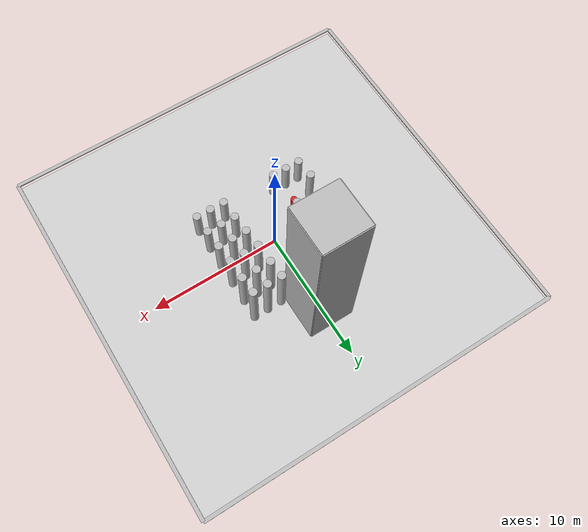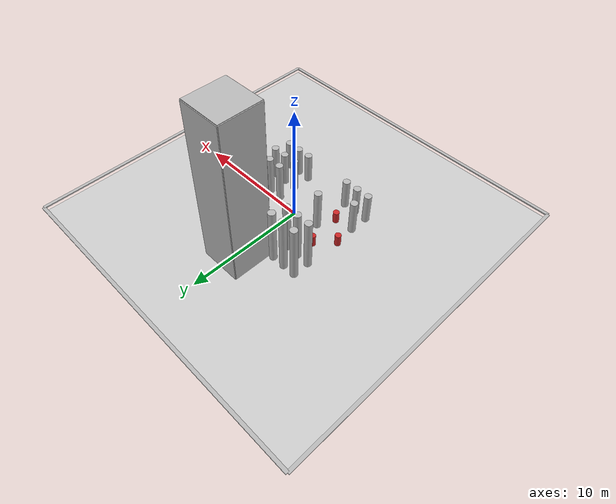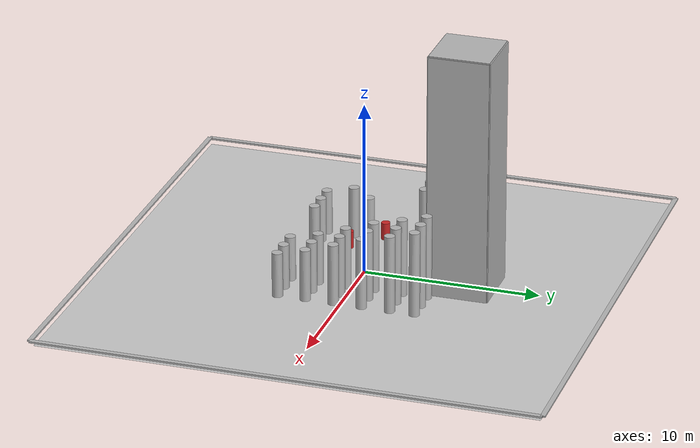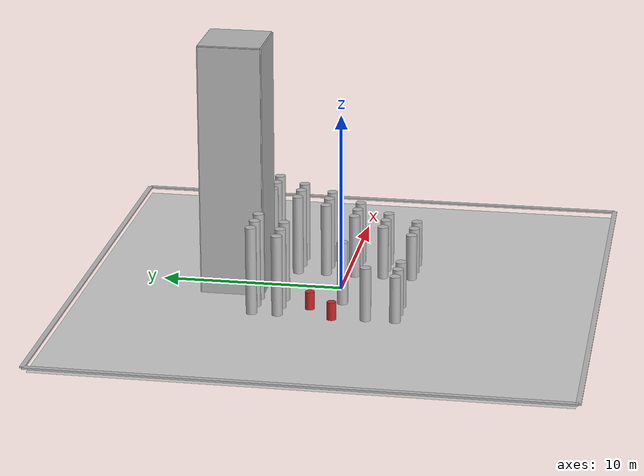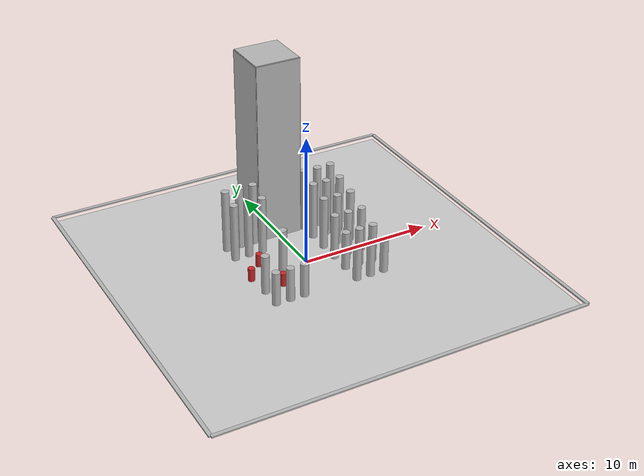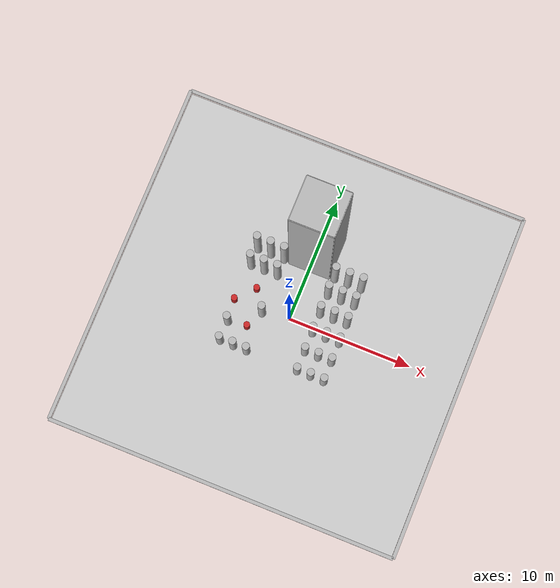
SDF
<?xml version="1.0"?>
<!-- Tour Hassan Rabat — plaza + pillar border, cloudy sky, mosque -->
<sdf version="1.6">
  <world name="hassan_rabat">

  <physics type="ode">
    <max_step_size>0.01</max_step_size>
    <real_time_factor>1</real_time_factor>
    <real_time_update_rate>100</real_time_update_rate>
    <ode>
      <solver><type>quick</type><iters>50</iters><sor>1.3</sor></solver>
      <constraints><cfm>0</cfm><erp>0.2</erp>
        <contact_max_correcting_vel>100</contact_max_correcting_vel>
        <contact_surface_layer>0.001</contact_surface_layer>
      </constraints>
    </ode>
  </physics>

  <plugin name="gazebo_ros_state" filename="libgazebo_ros_state.so">
    <ros><namespace>/</namespace></ros>
    <update_rate>20.0</update_rate>
  </plugin>

  <scene>
    <ambient>0.92 0.95 1.0 1</ambient>
    <background>0.55 0.78 0.98 1</background>
    <shadows>false</shadows>
    <grid>false</grid>
  </scene>
  <light type="directional" name="sun_warm">
    <cast_shadows>false</cast_shadows>
    <diffuse>1.0 0.97 0.88 1</diffuse>
    <specular>0.15 0.12 0.08 1</specular>
    <direction>-0.35 0.12 -0.92</direction>
  </light>
  <light type="directional" name="sky_fill">
    <cast_shadows>false</cast_shadows>
    <diffuse>0.45 0.55 0.75 1</diffuse>
    <direction>0.1 -0.05 -1.0</direction>
  </light>

  <model name="hassan_plaza"><static>true</static><pose>0 0 0 0 0 0</pose><link name="link"><collision name="c"><geometry><plane><normal>0 0 1</normal><size>28.0 28.0</size></plane></geometry><surface><friction><ode><mu>0.65</mu><mu2>0.65</mu2></ode></friction></surface></collision><visual name="paving"><geometry><plane><normal>0 0 1</normal><size>28.0 28.0</size></plane></geometry>
          <material><script><uri>file:///home/anon/ros2_ws/src/safe_drl_nav/safe_drl_nav/sim_assets/materials/scripts</uri><name>Hassan/Floor</name></script></material>
</visual></link></model>

  <model name="wall_n"><static>true</static><pose>0 14.14 0.275 0 0 0</pose><link name="link"><collision name="c"><geometry><box><size>28.28 0.28 0.55</size></box></geometry></collision><visual name="v"><geometry><box><size>28.28 0.28 0.1</size></box></geometry>
          <material><script><uri>file:///home/anon/ros2_ws/src/safe_drl_nav/safe_drl_nav/sim_assets/materials/scripts</uri><name>Hassan/Pillar</name></script></material>
</visual></link></model>

  <model name="wall_s"><static>true</static><pose>0 -14.14 0.275 0 0 0</pose><link name="link"><collision name="c"><geometry><box><size>28.28 0.28 0.55</size></box></geometry></collision><visual name="v"><geometry><box><size>28.28 0.28 0.1</size></box></geometry>
          <material><script><uri>file:///home/anon/ros2_ws/src/safe_drl_nav/safe_drl_nav/sim_assets/materials/scripts</uri><name>Hassan/Pillar</name></script></material>
</visual></link></model>

  <model name="wall_e"><static>true</static><pose>14.14 0 0.275 0 0 0</pose><link name="link"><collision name="c"><geometry><box><size>0.28 28.28 0.55</size></box></geometry></collision><visual name="v"><geometry><box><size>0.28 28.28 0.1</size></box></geometry>
          <material><script><uri>file:///home/anon/ros2_ws/src/safe_drl_nav/safe_drl_nav/sim_assets/materials/scripts</uri><name>Hassan/Pillar</name></script></material>
</visual></link></model>

  <model name="wall_w"><static>true</static><pose>-14.14 0 0.275 0 0 0</pose><link name="link"><collision name="c"><geometry><box><size>0.28 28.28 0.55</size></box></geometry></collision><visual name="v"><geometry><box><size>0.28 28.28 0.1</size></box></geometry>
          <material><script><uri>file:///home/anon/ros2_ws/src/safe_drl_nav/safe_drl_nav/sim_assets/materials/scripts</uri><name>Hassan/Pillar</name></script></material>
</visual></link></model>

  <model name="hassan_mosque"><static>true</static><pose>0 5.8 0 0 0 0</pose><link name="link"><collision name="c"><pose>0 0 7.0 0 0 0</pose><geometry><box><size>3.4 3.4 14.0</size></box></geometry></collision><visual name="core"><pose>0 0 7.0 0 0 0</pose><geometry><box><size>3.32 3.32 13.94</size></box></geometry>
          <material><script><uri>file:///home/anon/ros2_ws/src/safe_drl_nav/safe_drl_nav/sim_assets/materials/scripts</uri><name>Hassan/TowerCore</name></script></material>
</visual><visual name="face_s"><pose>0 -1.73 7.0 0 0 0</pose><geometry><box><size>3.4 0.06 14.0</size></box></geometry>
          <material><script><uri>file:///home/anon/ros2_ws/src/safe_drl_nav/safe_drl_nav/sim_assets/materials/scripts</uri><name>Hassan/TowerFace</name></script></material>
</visual><visual name="face_n"><pose>0 1.73 7.0 0 0 0</pose><geometry><box><size>3.4 0.06 14.0</size></box></geometry>
          <material><script><uri>file:///home/anon/ros2_ws/src/safe_drl_nav/safe_drl_nav/sim_assets/materials/scripts</uri><name>Hassan/TowerFace</name></script></material>
</visual><visual name="face_e"><pose>1.73 0 7.0 0 0 0</pose><geometry><box><size>0.06 3.4 14.0</size></box></geometry>
          <material><script><uri>file:///home/anon/ros2_ws/src/safe_drl_nav/safe_drl_nav/sim_assets/materials/scripts</uri><name>Hassan/TowerFace</name></script></material>
</visual><visual name="face_w"><pose>-1.73 0 7.0 0 0 0</pose><geometry><box><size>0.06 3.4 14.0</size></box></geometry>
          <material><script><uri>file:///home/anon/ros2_ws/src/safe_drl_nav/safe_drl_nav/sim_assets/materials/scripts</uri><name>Hassan/TowerFace</name></script></material>
</visual><visual name="top"><pose>0 0 14.03 0 0 0</pose><geometry><box><size>3.4 3.4 0.06</size></box></geometry>
          <material><script><uri>file:///home/anon/ros2_ws/src/safe_drl_nav/safe_drl_nav/sim_assets/materials/scripts</uri><name>Hassan/TowerTop</name></script></material>
</visual></link></model>

  <model name="p_0"><static>true</static><pose>-4.3 -3.6 1.3 0 0 0</pose><link name="link"><collision name="c"><geometry><cylinder><radius>0.3</radius><length>2.6</length></cylinder></geometry></collision><visual name="v"><geometry><cylinder><radius>0.3</radius><length>2.6</length></cylinder></geometry>
          <material><script><uri>file:///home/anon/ros2_ws/src/safe_drl_nav/safe_drl_nav/sim_assets/materials/scripts</uri><name>Hassan/Pillar</name></script></material>
</visual></link></model>

  <model name="p_1"><static>true</static><pose>-3.2 -3.6 1.3 0 0 0</pose><link name="link"><collision name="c"><geometry><cylinder><radius>0.3</radius><length>2.6</length></cylinder></geometry></collision><visual name="v"><geometry><cylinder><radius>0.3</radius><length>2.6</length></cylinder></geometry>
          <material><script><uri>file:///home/anon/ros2_ws/src/safe_drl_nav/safe_drl_nav/sim_assets/materials/scripts</uri><name>Hassan/Pillar</name></script></material>
</visual></link></model>

  <model name="p_2"><static>true</static><pose>-2.1 -3.6 1.3 0 0 0</pose><link name="link"><collision name="c"><geometry><cylinder><radius>0.3</radius><length>2.6</length></cylinder></geometry></collision><visual name="v"><geometry><cylinder><radius>0.3</radius><length>2.6</length></cylinder></geometry>
          <material><script><uri>file:///home/anon/ros2_ws/src/safe_drl_nav/safe_drl_nav/sim_assets/materials/scripts</uri><name>Hassan/Pillar</name></script></material>
</visual></link></model>

  <model name="p_3"><static>true</static><pose>2.1 -3.6 1.3 0 0 0</pose><link name="link"><collision name="c"><geometry><cylinder><radius>0.3</radius><length>2.6</length></cylinder></geometry></collision><visual name="v"><geometry><cylinder><radius>0.3</radius><length>2.6</length></cylinder></geometry>
          <material><script><uri>file:///home/anon/ros2_ws/src/safe_drl_nav/safe_drl_nav/sim_assets/materials/scripts</uri><name>Hassan/Pillar</name></script></material>
</visual></link></model>

  <model name="p_4"><static>true</static><pose>3.2 -3.6 1.3 0 0 0</pose><link name="link"><collision name="c"><geometry><cylinder><radius>0.3</radius><length>2.6</length></cylinder></geometry></collision><visual name="v"><geometry><cylinder><radius>0.3</radius><length>2.6</length></cylinder></geometry>
          <material><script><uri>file:///home/anon/ros2_ws/src/safe_drl_nav/safe_drl_nav/sim_assets/materials/scripts</uri><name>Hassan/Pillar</name></script></material>
</visual></link></model>

  <model name="p_5"><static>true</static><pose>4.3 -3.6 1.3 0 0 0</pose><link name="link"><collision name="c"><geometry><cylinder><radius>0.3</radius><length>2.6</length></cylinder></geometry></collision><visual name="v"><geometry><cylinder><radius>0.3</radius><length>2.6</length></cylinder></geometry>
          <material><script><uri>file:///home/anon/ros2_ws/src/safe_drl_nav/safe_drl_nav/sim_assets/materials/scripts</uri><name>Hassan/Pillar</name></script></material>
</visual></link></model>

  <model name="p_6"><static>true</static><pose>-4.3 -2.0 1.5 0 0 0</pose><link name="link"><collision name="c"><geometry><cylinder><radius>0.3</radius><length>3.0</length></cylinder></geometry></collision><visual name="v"><geometry><cylinder><radius>0.3</radius><length>3.0</length></cylinder></geometry>
          <material><script><uri>file:///home/anon/ros2_ws/src/safe_drl_nav/safe_drl_nav/sim_assets/materials/scripts</uri><name>Hassan/Pillar</name></script></material>
</visual></link></model>

  <model name="p_7"><static>true</static><pose>2.1 -2.0 1.5 0 0 0</pose><link name="link"><collision name="c"><geometry><cylinder><radius>0.3</radius><length>3.0</length></cylinder></geometry></collision><visual name="v"><geometry><cylinder><radius>0.3</radius><length>3.0</length></cylinder></geometry>
          <material><script><uri>file:///home/anon/ros2_ws/src/safe_drl_nav/safe_drl_nav/sim_assets/materials/scripts</uri><name>Hassan/Pillar</name></script></material>
</visual></link></model>

  <model name="p_8"><static>true</static><pose>3.2 -2.0 1.5 0 0 0</pose><link name="link"><collision name="c"><geometry><cylinder><radius>0.3</radius><length>3.0</length></cylinder></geometry></collision><visual name="v"><geometry><cylinder><radius>0.3</radius><length>3.0</length></cylinder></geometry>
          <material><script><uri>file:///home/anon/ros2_ws/src/safe_drl_nav/safe_drl_nav/sim_assets/materials/scripts</uri><name>Hassan/Pillar</name></script></material>
</visual></link></model>

  <model name="p_9"><static>true</static><pose>4.3 -2.0 1.5 0 0 0</pose><link name="link"><collision name="c"><geometry><cylinder><radius>0.3</radius><length>3.0</length></cylinder></geometry></collision><visual name="v"><geometry><cylinder><radius>0.3</radius><length>3.0</length></cylinder></geometry>
          <material><script><uri>file:///home/anon/ros2_ws/src/safe_drl_nav/safe_drl_nav/sim_assets/materials/scripts</uri><name>Hassan/Pillar</name></script></material>
</visual></link></model>

  <model name="p_10"><static>true</static><pose>-2.1 -0.4 1.77 0 0 0</pose><link name="link"><collision name="c"><geometry><cylinder><radius>0.3</radius><length>3.55</length></cylinder></geometry></collision><visual name="v"><geometry><cylinder><radius>0.3</radius><length>3.55</length></cylinder></geometry>
          <material><script><uri>file:///home/anon/ros2_ws/src/safe_drl_nav/safe_drl_nav/sim_assets/materials/scripts</uri><name>Hassan/Pillar</name></script></material>
</visual></link></model>

  <model name="p_11"><static>true</static><pose>2.1 -0.4 1.77 0 0 0</pose><link name="link"><collision name="c"><geometry><cylinder><radius>0.3</radius><length>3.55</length></cylinder></geometry></collision><visual name="v"><geometry><cylinder><radius>0.3</radius><length>3.55</length></cylinder></geometry>
          <material><script><uri>file:///home/anon/ros2_ws/src/safe_drl_nav/safe_drl_nav/sim_assets/materials/scripts</uri><name>Hassan/Pillar</name></script></material>
</visual></link></model>

  <model name="p_12"><static>true</static><pose>3.2 -0.4 1.77 0 0 0</pose><link name="link"><collision name="c"><geometry><cylinder><radius>0.3</radius><length>3.55</length></cylinder></geometry></collision><visual name="v"><geometry><cylinder><radius>0.3</radius><length>3.55</length></cylinder></geometry>
          <material><script><uri>file:///home/anon/ros2_ws/src/safe_drl_nav/safe_drl_nav/sim_assets/materials/scripts</uri><name>Hassan/Pillar</name></script></material>
</visual></link></model>

  <model name="p_13"><static>true</static><pose>4.3 -0.4 1.77 0 0 0</pose><link name="link"><collision name="c"><geometry><cylinder><radius>0.3</radius><length>3.55</length></cylinder></geometry></collision><visual name="v"><geometry><cylinder><radius>0.3</radius><length>3.55</length></cylinder></geometry>
          <material><script><uri>file:///home/anon/ros2_ws/src/safe_drl_nav/safe_drl_nav/sim_assets/materials/scripts</uri><name>Hassan/Pillar</name></script></material>
</visual></link></model>

  <model name="p_14"><static>true</static><pose>2.1 1.2 2.05 0 0 0</pose><link name="link"><collision name="c"><geometry><cylinder><radius>0.3</radius><length>4.1</length></cylinder></geometry></collision><visual name="v"><geometry><cylinder><radius>0.3</radius><length>4.1</length></cylinder></geometry>
          <material><script><uri>file:///home/anon/ros2_ws/src/safe_drl_nav/safe_drl_nav/sim_assets/materials/scripts</uri><name>Hassan/Pillar</name></script></material>
</visual></link></model>

  <model name="p_15"><static>true</static><pose>3.2 1.2 2.05 0 0 0</pose><link name="link"><collision name="c"><geometry><cylinder><radius>0.3</radius><length>4.1</length></cylinder></geometry></collision><visual name="v"><geometry><cylinder><radius>0.3</radius><length>4.1</length></cylinder></geometry>
          <material><script><uri>file:///home/anon/ros2_ws/src/safe_drl_nav/safe_drl_nav/sim_assets/materials/scripts</uri><name>Hassan/Pillar</name></script></material>
</visual></link></model>

  <model name="p_16"><static>true</static><pose>4.3 1.2 2.05 0 0 0</pose><link name="link"><collision name="c"><geometry><cylinder><radius>0.3</radius><length>4.1</length></cylinder></geometry></collision><visual name="v"><geometry><cylinder><radius>0.3</radius><length>4.1</length></cylinder></geometry>
          <material><script><uri>file:///home/anon/ros2_ws/src/safe_drl_nav/safe_drl_nav/sim_assets/materials/scripts</uri><name>Hassan/Pillar</name></script></material>
</visual></link></model>

  <model name="p_17"><static>true</static><pose>-4.3 2.8 2.25 0 0 0</pose><link name="link"><collision name="c"><geometry><cylinder><radius>0.3</radius><length>4.5</length></cylinder></geometry></collision><visual name="v"><geometry><cylinder><radius>0.3</radius><length>4.5</length></cylinder></geometry>
          <material><script><uri>file:///home/anon/ros2_ws/src/safe_drl_nav/safe_drl_nav/sim_assets/materials/scripts</uri><name>Hassan/Pillar</name></script></material>
</visual></link></model>

  <model name="p_18"><static>true</static><pose>-3.2 2.8 2.25 0 0 0</pose><link name="link"><collision name="c"><geometry><cylinder><radius>0.3</radius><length>4.5</length></cylinder></geometry></collision><visual name="v"><geometry><cylinder><radius>0.3</radius><length>4.5</length></cylinder></geometry>
          <material><script><uri>file:///home/anon/ros2_ws/src/safe_drl_nav/safe_drl_nav/sim_assets/materials/scripts</uri><name>Hassan/Pillar</name></script></material>
</visual></link></model>

  <model name="p_19"><static>true</static><pose>-2.1 2.8 2.25 0 0 0</pose><link name="link"><collision name="c"><geometry><cylinder><radius>0.3</radius><length>4.5</length></cylinder></geometry></collision><visual name="v"><geometry><cylinder><radius>0.3</radius><length>4.5</length></cylinder></geometry>
          <material><script><uri>file:///home/anon/ros2_ws/src/safe_drl_nav/safe_drl_nav/sim_assets/materials/scripts</uri><name>Hassan/Pillar</name></script></material>
</visual></link></model>

  <model name="p_20"><static>true</static><pose>2.1 2.8 2.25 0 0 0</pose><link name="link"><collision name="c"><geometry><cylinder><radius>0.3</radius><length>4.5</length></cylinder></geometry></collision><visual name="v"><geometry><cylinder><radius>0.3</radius><length>4.5</length></cylinder></geometry>
          <material><script><uri>file:///home/anon/ros2_ws/src/safe_drl_nav/safe_drl_nav/sim_assets/materials/scripts</uri><name>Hassan/Pillar</name></script></material>
</visual></link></model>

  <model name="p_21"><static>true</static><pose>3.2 2.8 2.25 0 0 0</pose><link name="link"><collision name="c"><geometry><cylinder><radius>0.3</radius><length>4.5</length></cylinder></geometry></collision><visual name="v"><geometry><cylinder><radius>0.3</radius><length>4.5</length></cylinder></geometry>
          <material><script><uri>file:///home/anon/ros2_ws/src/safe_drl_nav/safe_drl_nav/sim_assets/materials/scripts</uri><name>Hassan/Pillar</name></script></material>
</visual></link></model>

  <model name="p_22"><static>true</static><pose>4.3 2.8 2.25 0 0 0</pose><link name="link"><collision name="c"><geometry><cylinder><radius>0.3</radius><length>4.5</length></cylinder></geometry></collision><visual name="v"><geometry><cylinder><radius>0.3</radius><length>4.5</length></cylinder></geometry>
          <material><script><uri>file:///home/anon/ros2_ws/src/safe_drl_nav/safe_drl_nav/sim_assets/materials/scripts</uri><name>Hassan/Pillar</name></script></material>
</visual></link></model>

  <model name="p_23"><static>true</static><pose>-4.3 4.2 2.45 0 0 0</pose><link name="link"><collision name="c"><geometry><cylinder><radius>0.3</radius><length>4.9</length></cylinder></geometry></collision><visual name="v"><geometry><cylinder><radius>0.3</radius><length>4.9</length></cylinder></geometry>
          <material><script><uri>file:///home/anon/ros2_ws/src/safe_drl_nav/safe_drl_nav/sim_assets/materials/scripts</uri><name>Hassan/Pillar</name></script></material>
</visual></link></model>

  <model name="p_24"><static>true</static><pose>-3.2 4.2 2.45 0 0 0</pose><link name="link"><collision name="c"><geometry><cylinder><radius>0.3</radius><length>4.9</length></cylinder></geometry></collision><visual name="v"><geometry><cylinder><radius>0.3</radius><length>4.9</length></cylinder></geometry>
          <material><script><uri>file:///home/anon/ros2_ws/src/safe_drl_nav/safe_drl_nav/sim_assets/materials/scripts</uri><name>Hassan/Pillar</name></script></material>
</visual></link></model>

  <model name="p_25"><static>true</static><pose>-2.1 4.2 2.45 0 0 0</pose><link name="link"><collision name="c"><geometry><cylinder><radius>0.3</radius><length>4.9</length></cylinder></geometry></collision><visual name="v"><geometry><cylinder><radius>0.3</radius><length>4.9</length></cylinder></geometry>
          <material><script><uri>file:///home/anon/ros2_ws/src/safe_drl_nav/safe_drl_nav/sim_assets/materials/scripts</uri><name>Hassan/Pillar</name></script></material>
</visual></link></model>

  <model name="p_26"><static>true</static><pose>2.1 4.2 2.45 0 0 0</pose><link name="link"><collision name="c"><geometry><cylinder><radius>0.3</radius><length>4.9</length></cylinder></geometry></collision><visual name="v"><geometry><cylinder><radius>0.3</radius><length>4.9</length></cylinder></geometry>
          <material><script><uri>file:///home/anon/ros2_ws/src/safe_drl_nav/safe_drl_nav/sim_assets/materials/scripts</uri><name>Hassan/Pillar</name></script></material>
</visual></link></model>

  <model name="p_27"><static>true</static><pose>3.2 4.2 2.45 0 0 0</pose><link name="link"><collision name="c"><geometry><cylinder><radius>0.3</radius><length>4.9</length></cylinder></geometry></collision><visual name="v"><geometry><cylinder><radius>0.3</radius><length>4.9</length></cylinder></geometry>
          <material><script><uri>file:///home/anon/ros2_ws/src/safe_drl_nav/safe_drl_nav/sim_assets/materials/scripts</uri><name>Hassan/Pillar</name></script></material>
</visual></link></model>

  <model name="p_28"><static>true</static><pose>4.3 4.2 2.45 0 0 0</pose><link name="link"><collision name="c"><geometry><cylinder><radius>0.3</radius><length>4.9</length></cylinder></geometry></collision><visual name="v"><geometry><cylinder><radius>0.3</radius><length>4.9</length></cylinder></geometry>
          <material><script><uri>file:///home/anon/ros2_ws/src/safe_drl_nav/safe_drl_nav/sim_assets/materials/scripts</uri><name>Hassan/Pillar</name></script></material>
</visual></link></model>

  <model name="wp1"><static>true</static><pose>-2.8 -1.8 0.5 0 0 0</pose><link name="link"><collision name="c"><geometry><cylinder><radius>0.25</radius><length>1.0</length></cylinder></geometry></collision><visual name="v"><geometry><cylinder><radius>0.25</radius><length>1.0</length></cylinder></geometry>
          <material><script><uri>file://media/materials/scripts/gazebo.material</uri><name>Gazebo/Red</name></script></material>
</visual></link></model>

  <model name="wp2"><static>true</static><pose>-4.5 -0.2 0.5 0 0 0</pose><link name="link"><collision name="c"><geometry><cylinder><radius>0.25</radius><length>1.0</length></cylinder></geometry></collision><visual name="v"><geometry><cylinder><radius>0.25</radius><length>1.0</length></cylinder></geometry>
          <material><script><uri>file://media/materials/scripts/gazebo.material</uri><name>Gazebo/Red</name></script></material>
</visual></link></model>

  <model name="wp3"><static>true</static><pose>-3.2 1.2 0.5 0 0 0</pose><link name="link"><collision name="c"><geometry><cylinder><radius>0.25</radius><length>1.0</length></cylinder></geometry></collision><visual name="v"><geometry><cylinder><radius>0.25</radius><length>1.0</length></cylinder></geometry>
          <material><script><uri>file://media/materials/scripts/gazebo.material</uri><name>Gazebo/Red</name></script></material>
</visual></link></model>

  </world>
</sdf>
